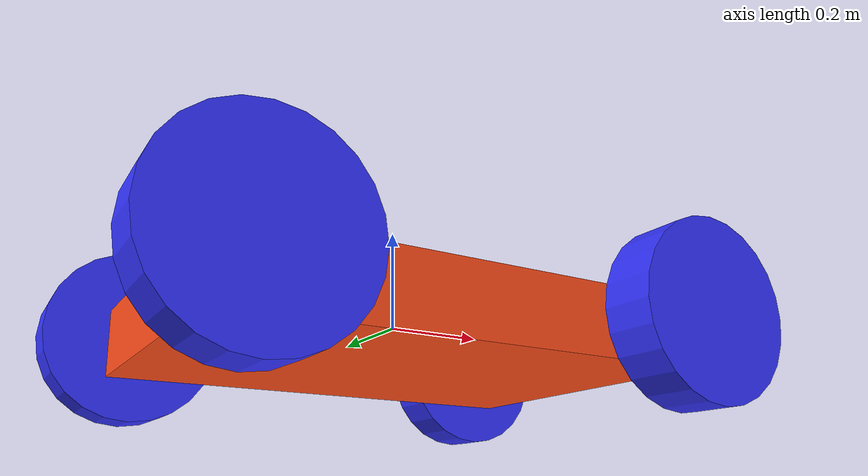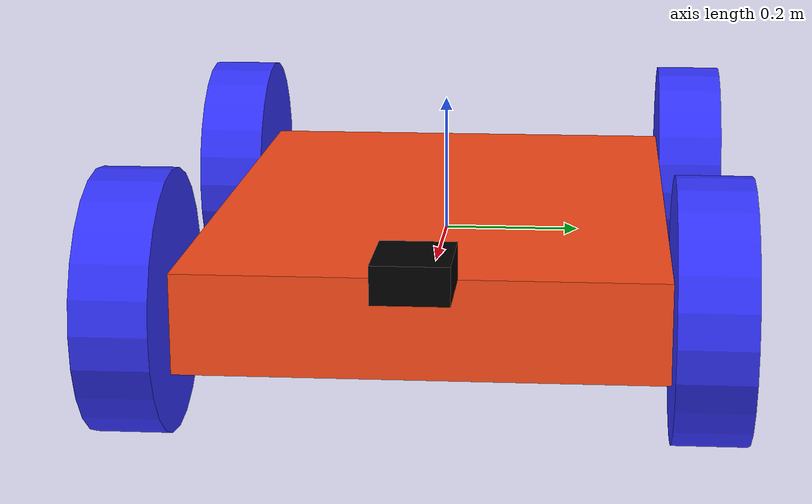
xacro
<?xml version="1.0"?>
<robot xmlns:xacro="http://www.ros.org/wiki/xacro"  >

    <xacro:include filename="inertial_macros.xacro"/>

    <!-- Original chassis properties (restored for proper turning) -->
    <xacro:property name="chassis_length" value="0.9652"/>      <!-- 38 in -->
    <xacro:property name="chassis_width" value="0.6604"/>       <!-- 26 in - original width for proper turning -->
    <xacro:property name="chassis_height" value="0.138"/>       <!-- kept original unless specified -->
    <xacro:property name="chassis_mass" value="14.608"/>        <!-- full chassis -->

    <!-- Original wheel properties -->
    <xacro:property name="wheel_radius" value="0.1778"/>        <!-- 7 in -->
    <xacro:property name="wheel_thickness" value="0.1016"/>     <!-- 4 in -->
    <xacro:property name="wheel_mass" value="1.977"/>           <!-- wheel + hub + gearbox + motor -->

    <!-- Original wheel offsets (restored for proper turning) -->
    <xacro:property name="wheel_offset_x" value="0.4826"/>      <!-- half of chassis_length -->
    <xacro:property name="wheel_offset_y" value="0.3810"/>      <!-- original offset for proper wheel separation -->
    <xacro:property name="wheel_offset_z" value="0.0889"/>      <!-- ~3.5 in off ground -->

    <!-- Global contact/friction parameters -->
    <xacro:property name="wheel_mu" value="0.8"/>
    <xacro:property name="wheel_mu2" value="0.8"/>
    <xacro:property name="wheel_kp" value="1000000.0"/>
    <xacro:property name="wheel_kd" value="1.0"/>
    <xacro:property name="wheel_min_depth" value="0.001"/>
    <xacro:property name="wheel_slip1" value="0.01"/>
    <xacro:property name="wheel_slip2" value="0.01"/>

    <!-- LIDAR properties -->
    <xacro:property name="lidar_box_x" value="0.1270"/>   <!-- 5 in -->
    <xacro:property name="lidar_box_y" value="0.1016"/>   <!-- 4 in -->
    <xacro:property name="lidar_box_z" value="0.0508"/>   <!-- 2 in -->
    <xacro:property name="lidar_box_mass" value="0.25"/>  <!-- kg -->

    <material name="white">
        <color rgba="1 1 1 1"/>
    </material>

    <material name="orange">
        <color rgba="1 0.3 0.1 1"/>
    </material>

    <material name="blue">
        <color rgba="0.2 0.2 1 1"/>
    </material>

    <material name="black">
        <color rgba="0 0 0 1"/>
    </material>

    <!-- BASE LINK -->
    <link name = "base_link">

    </link>

    <!-- CHASSIS LINK -->

    <joint name = "chassis_joint" type = "fixed">
        <parent link = "base_link"/>
        <child link = "chassis"/>
        <origin xyz = "${-wheel_offset_x} 0 ${-wheel_offset_z}"/>

    </joint>

    <link name = "chassis">
        <visual>
            <origin xyz="${chassis_length/2} 0 ${chassis_height/2}"/>
            <geometry>
                <box size = "${chassis_length} ${chassis_width} ${chassis_height}"/>
            </geometry>
            <material name="orange"/>
        </visual>
        <collision>
            <origin xyz="${chassis_length/2} 0 ${chassis_height/2}"/>
            <geometry>
                <box size = "${chassis_length} ${chassis_width} ${chassis_height}"/>
            </geometry>
            <material name="orange"/>
        </collision>
        <xacro:inertial_box mass="${chassis_mass}" x="${chassis_length}" y="${chassis_width}" z="${chassis_height}">
            <origin xyz="${chassis_length/2} 0 ${chassis_height/2}" rpy="0 0 0"/>
        </xacro:inertial_box>
    </link>

    <!-- LEFT FRONT WHEEL LINK  -->
    <joint name="left_front_wheel_joint" type="continuous">
        <parent link="base_link"/>
        <child link="left_front_wheel"/>
        <origin xyz="${wheel_offset_x - 0.05} ${wheel_offset_y} 0" rpy="-${pi/2} 0 0" />
        <axis xyz="0 0 1"/>
        <dynamics damping="0.7" friction="0.3"/>
    </joint>

    <link name="left_front_wheel">
        <visual>
            <geometry>
                <cylinder radius="${wheel_radius}" length="${wheel_thickness}"/>
            </geometry>
            <material name="blue"/>
        </visual>
        <collision>
            <geometry>
                <cylinder radius="${wheel_radius}" length="${wheel_thickness}"/>
            </geometry>
        </collision>
        <xacro:inertial_cylinder mass="${wheel_mass}" length="${wheel_thickness}" radius="${wheel_radius}">
            <origin xyz="0 0 0" rpy="0 0 0"/>
        </xacro:inertial_cylinder>
    </link>

    <!-- RIGHT FRONT WHEEL LINK  -->
    <joint name="right_front_wheel_joint" type="continuous">
        <parent link="base_link"/>
        <child link="right_front_wheel"/>
        <origin xyz="${wheel_offset_x - 0.05} ${-wheel_offset_y} 0" rpy="${pi/2} 0 0" />
        <axis xyz="0 0 -1"/>
        <dynamics damping="0.7" friction="0.3"/>
    </joint>

    <link name="right_front_wheel">
        <visual>
            <geometry>
                <cylinder radius="${wheel_radius}" length="${wheel_thickness}"/>
            </geometry>
            <material name="blue"/>
        </visual>
        <collision>
            <geometry>
                <cylinder radius="${wheel_radius}" length="${wheel_thickness}"/>
            </geometry>
        </collision>
        <xacro:inertial_cylinder mass="${wheel_mass}" length="${wheel_thickness}" radius="${wheel_radius}">
            <origin xyz="0 0 0" rpy="0 0 0"/>
        </xacro:inertial_cylinder>
    </link>

 <!-- LEFT REAR WHEEL LINK -->
    <joint name="left_wheel_joint" type="continuous">
        <parent link="base_link"/>
        <child link="left_wheel"/>
        <origin xyz="${-wheel_offset_x + 0.05} ${wheel_offset_y} 0" rpy="-${pi/2} 0 0" />
        <axis xyz="0 0 1"/>
        <dynamics damping="0.7" friction="0.3"/>
    </joint>

    <link name="left_wheel">
        <visual>
            <geometry>
                <cylinder radius="${wheel_radius}" length="${wheel_thickness}"/>
            </geometry>
            <material name="blue"/>
        </visual>
        <collision>
            <geometry>
                <cylinder radius="${wheel_radius}" length="${wheel_thickness}"/>
            </geometry>
        </collision>
        <xacro:inertial_cylinder mass="${wheel_mass}" length="${wheel_thickness}" radius="${wheel_radius}">
            <origin xyz="0 0 0" rpy="0 0 0"/>
        </xacro:inertial_cylinder>
    </link>

    <!-- RIGHT REAR WHEEL LINK  -->
    <joint name="right_wheel_joint" type="continuous">
        <parent link="base_link"/>
        <child link="right_wheel"/>
        <origin xyz="${-wheel_offset_x + 0.05} ${-wheel_offset_y} 0" rpy="${pi/2} 0 0" />
        <axis xyz="0 0 -1"/>
        <dynamics damping="0.7" friction="0.3"/>
    </joint>

    <link name="right_wheel">
        <visual>
            <geometry>
                <cylinder radius="${wheel_radius}" length="${wheel_thickness}"/>
            </geometry>
            <material name="blue"/>
        </visual>
        <collision>
            <geometry>
                <cylinder radius="${wheel_radius}" length="${wheel_thickness}"/>
            </geometry>
        </collision>
        <xacro:inertial_cylinder mass="${wheel_mass}" length="${wheel_thickness}" radius="${wheel_radius}">
            <origin xyz="0 0 0" rpy="0 0 0"/>
        </xacro:inertial_cylinder>
    </link>

    <!-- LIDAR CAMERA (rectangle box (mounted on top-front of chassis)) -->

    <joint name="lidar_joint" type="fixed">
    <parent link="chassis"/>
    <child link="lidar_box_link"/>
    <origin
        xyz="${chassis_length + lidar_box_x/2} 0 ${chassis_height + lidar_box_z/2}"
        rpy="0 0 0"/>
    </joint>

    <link name="lidar_box_link">
    <visual>
        <origin xyz="0 0 0" rpy="0 0 0"/>
        <geometry>
        <box size="${lidar_box_x} ${lidar_box_y} ${lidar_box_z}"/>
        </geometry>
        <material name="black"/>
    </visual>

    <collision>
        <origin xyz="0 0 0" rpy="0 0 0"/>
        <geometry>
        <box size="${lidar_box_x} ${lidar_box_y} ${lidar_box_z}"/>
        </geometry>
    </collision>
    <xacro:inertial_box
        mass="${lidar_box_mass}" x="${lidar_box_x}" y="${lidar_box_y}" z="${lidar_box_z}">
        <origin xyz="0 0 0" rpy="0 0 0"/>
    </xacro:inertial_box>
    </link>

</robot>
